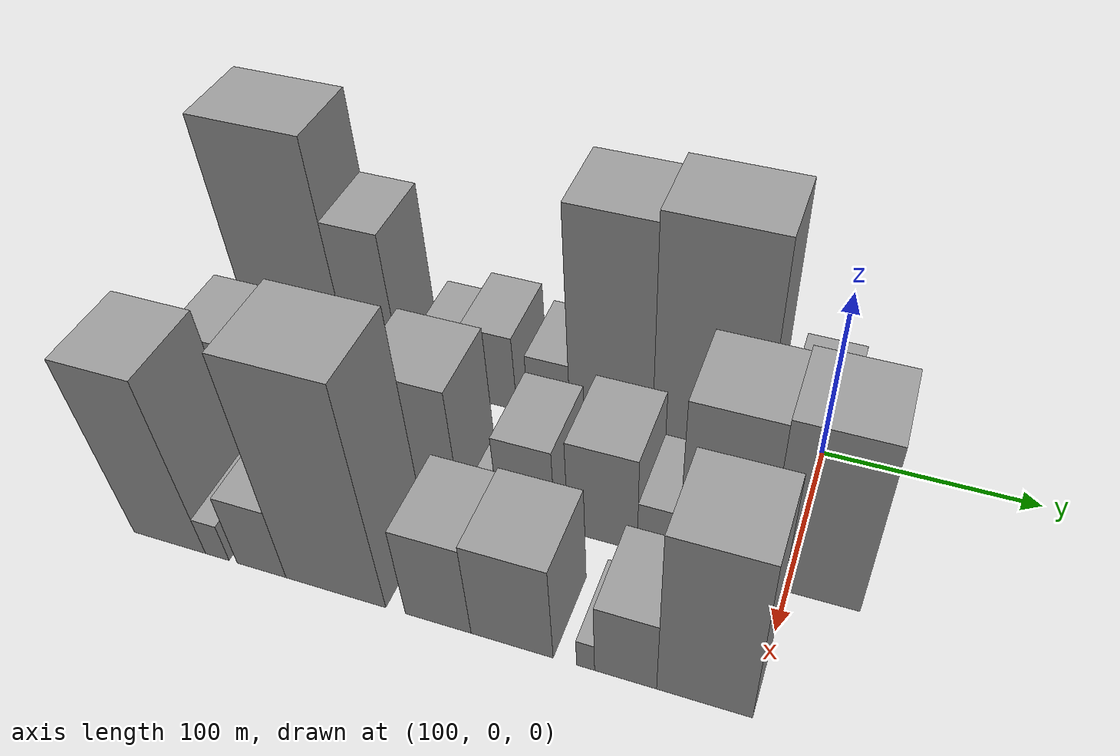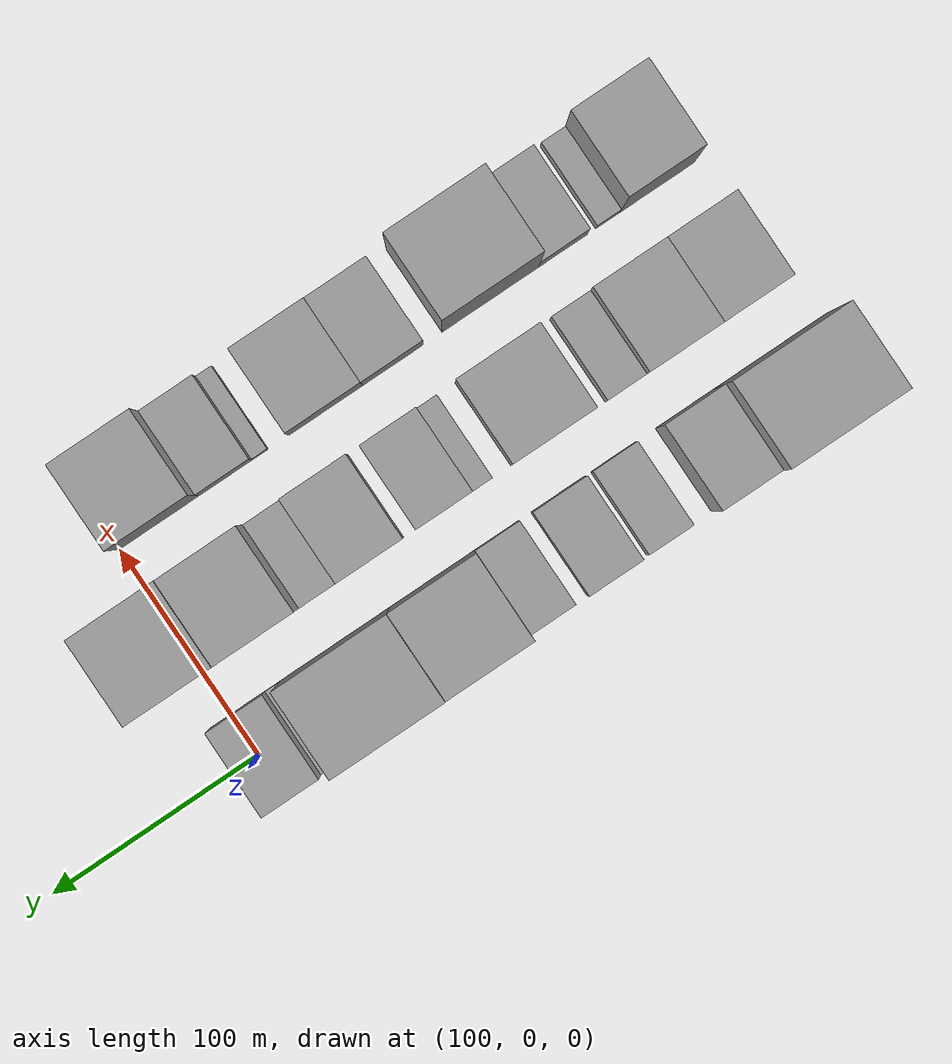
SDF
<sdf version="1.6">
 <world name="default">
  <model name="building_8">
   <static>1</static>
   <pose>100.0000 -261.7073 0 0.000000 0.000000 0.000000</pose>
   <link name="link">
    <pose>0 0 69.00 0 0 0</pose>
    <collision name="collision"><geometry><box><size>40.0000 54.6654 138.0000</size></box></geometry></collision>
    <visual name="visual">
     <cast_shadows>0</cast_shadows>
     <geometry><box><size>40.0000 54.6654 138.0000</size></box></geometry>
     <material>
      <script>
       <uri>model://grey_wall/materials/scripts</uri>
       <uri>model://grey_wall/materials/textures</uri>
       <name>vrc/grey_wall</name>
      </script>
     </material>
    </visual>
   </link>
  </model>
  <model name="building_9">
   <static>1</static>
   <pose>100.0000 -220.2208 0 0.000000 0.000000 0.000000</pose>
   <link name="link">
    <pose>0 0 46.50 0 0 0</pose>
    <collision name="collision"><geometry><box><size>40.0000 28.3076 93.0000</size></box></geometry></collision>
    <visual name="visual">
     <cast_shadows>0</cast_shadows>
     <geometry><box><size>40.0000 28.3076 93.0000</size></box></geometry>
     <material>
      <script>
       <uri>model://grey_wall/materials/scripts</uri>
       <uri>model://grey_wall/materials/textures</uri>
       <name>vrc/grey_wall</name>
      </script>
     </material>
    </visual>
   </link>
  </model>
  <model name="building_10">
   <static>1</static>
   <pose>100.0000 -185.3479 0 0.000000 0.000000 0.000000</pose>
   <link name="link">
    <pose>0 0 18.00 0 0 0</pose>
    <collision name="collision"><geometry><box><size>40.0000 21.4381 36.0000</size></box></geometry></collision>
    <visual name="visual">
     <cast_shadows>0</cast_shadows>
     <geometry><box><size>40.0000 21.4381 36.0000</size></box></geometry>
     <material>
      <script>
       <uri>model://grey_wall/materials/scripts</uri>
       <uri>model://grey_wall/materials/textures</uri>
       <name>vrc/grey_wall</name>
      </script>
     </material>
    </visual>
   </link>
  </model>
  <model name="building_11">
   <static>1</static>
   <pose>100.0000 -158.6383 0 0.000000 0.000000 0.000000</pose>
   <link name="link">
    <pose>0 0 24.00 0 0 0</pose>
    <collision name="collision"><geometry><box><size>40.0000 25.9812 48.0000</size></box></geometry></collision>
    <visual name="visual">
     <cast_shadows>0</cast_shadows>
     <geometry><box><size>40.0000 25.9812 48.0000</size></box></geometry>
     <material>
      <script>
       <uri>model://grey_wall/materials/scripts</uri>
       <uri>model://grey_wall/materials/textures</uri>
       <name>vrc/grey_wall</name>
      </script>
     </material>
    </visual>
   </link>
  </model>
  <model name="building_12">
   <static>1</static>
   <pose>100.0000 -128.9441 0 0.000000 0.000000 0.000000</pose>
   <link name="link">
    <pose>0 0 19.50 0 0 0</pose>
    <collision name="collision"><geometry><box><size>40.0000 21.4073 39.0000</size></box></geometry></collision>
    <visual name="visual">
     <cast_shadows>0</cast_shadows>
     <geometry><box><size>40.0000 21.4073 39.0000</size></box></geometry>
     <material>
      <script>
       <uri>model://grey_wall/materials/scripts</uri>
       <uri>model://grey_wall/materials/textures</uri>
       <name>vrc/grey_wall</name>
      </script>
     </material>
    </visual>
   </link>
  </model>
  <model name="building_13">
   <static>1</static>
   <pose>100.0000 -97.7758 0 0.000000 0.000000 0.000000</pose>
   <link name="link">
    <pose>0 0 66.00 0 0 0</pose>
    <collision name="collision"><geometry><box><size>40.0000 40.9294 132.0000</size></box></geometry></collision>
    <visual name="visual">
     <cast_shadows>0</cast_shadows>
     <geometry><box><size>40.0000 40.9294 132.0000</size></box></geometry>
     <material>
      <script>
       <uri>model://grey_wall/materials/scripts</uri>
       <uri>model://grey_wall/materials/textures</uri>
       <name>vrc/grey_wall</name>
      </script>
     </material>
    </visual>
   </link>
  </model>
  <model name="building_14">
   <static>1</static>
   <pose>100.0000 -50.9535 0 0.000000 0.000000 0.000000</pose>
   <link name="link">
    <pose>0 0 69.00 0 0 0</pose>
    <collision name="collision"><geometry><box><size>40.0000 52.7151 138.0000</size></box></geometry></collision>
    <visual name="visual">
     <cast_shadows>0</cast_shadows>
     <geometry><box><size>40.0000 52.7151 138.0000</size></box></geometry>
     <material>
      <script>
       <uri>model://grey_wall/materials/scripts</uri>
       <uri>model://grey_wall/materials/textures</uri>
       <name>vrc/grey_wall</name>
      </script>
     </material>
    </visual>
   </link>
  </model>
  <model name="building_15">
   <static>1</static>
   <pose>100.0000 -20.9547 0 0.000000 0.000000 0.000000</pose>
   <link name="link">
    <pose>0 0 9.00 0 0 0</pose>
    <collision name="collision"><geometry><box><size>40.0000 7.2826 18.0000</size></box></geometry></collision>
    <visual name="visual">
     <cast_shadows>0</cast_shadows>
     <geometry><box><size>40.0000 7.2826 18.0000</size></box></geometry>
     <material>
      <script>
       <uri>model://grey_wall/materials/scripts</uri>
       <uri>model://grey_wall/materials/textures</uri>
       <name>vrc/grey_wall</name>
      </script>
     </material>
    </visual>
   </link>
  </model>
  <model name="building_16">
   <static>1</static>
   <pose>100.0000 -3.7661 0 0.000000 0.000000 0.000000</pose>
   <link name="link">
    <pose>0 0 27.00 0 0 0</pose>
    <collision name="collision"><geometry><box><size>40.0000 27.0945 54.0000</size></box></geometry></collision>
    <visual name="visual">
     <cast_shadows>0</cast_shadows>
     <geometry><box><size>40.0000 27.0945 54.0000</size></box></geometry>
     <material>
      <script>
       <uri>model://grey_wall/materials/scripts</uri>
       <uri>model://grey_wall/materials/textures</uri>
       <name>vrc/grey_wall</name>
      </script>
     </material>
    </visual>
   </link>
  </model>
  <model name="building_46">
   <static>1</static>
   <pose>160.0000 -265.6744 0 0.000000 0.000000 0.000000</pose>
   <link name="link">
    <pose>0 0 33.00 0 0 0</pose>
    <collision name="collision"><geometry><box><size>40.0000 33.0507 66.0000</size></box></geometry></collision>
    <visual name="visual">
     <cast_shadows>0</cast_shadows>
     <geometry><box><size>40.0000 33.0507 66.0000</size></box></geometry>
     <material>
      <script>
       <uri>model://grey_wall/materials/scripts</uri>
       <uri>model://grey_wall/materials/textures</uri>
       <name>vrc/grey_wall</name>
      </script>
     </material>
    </visual>
   </link>
  </model>
  <model name="building_47">
   <static>1</static>
   <pose>160.0000 -231.5568 0 0.000000 0.000000 0.000000</pose>
   <link name="link">
    <pose>0 0 33.00 0 0 0</pose>
    <collision name="collision"><geometry><box><size>40.0000 35.1845 66.0000</size></box></geometry></collision>
    <visual name="visual">
     <cast_shadows>0</cast_shadows>
     <geometry><box><size>40.0000 35.1845 66.0000</size></box></geometry>
     <material>
      <script>
       <uri>model://grey_wall/materials/scripts</uri>
       <uri>model://grey_wall/materials/textures</uri>
       <name>vrc/grey_wall</name>
      </script>
     </material>
    </visual>
   </link>
  </model>
  <model name="building_48">
   <static>1</static>
   <pose>160.0000 -204.5643 0 0.000000 0.000000 0.000000</pose>
   <link name="link">
    <pose>0 0 18.00 0 0 0</pose>
    <collision name="collision"><geometry><box><size>40.0000 18.8004 36.0000</size></box></geometry></collision>
    <visual name="visual">
     <cast_shadows>0</cast_shadows>
     <geometry><box><size>40.0000 18.8004 36.0000</size></box></geometry>
     <material>
      <script>
       <uri>model://grey_wall/materials/scripts</uri>
       <uri>model://grey_wall/materials/textures</uri>
       <name>vrc/grey_wall</name>
      </script>
     </material>
    </visual>
   </link>
  </model>
  <model name="building_49">
   <static>1</static>
   <pose>160.0000 -169.2522 0 0.000000 0.000000 0.000000</pose>
   <link name="link">
    <pose>0 0 36.00 0 0 0</pose>
    <collision name="collision"><geometry><box><size>40.0000 39.8238 72.0000</size></box></geometry></collision>
    <visual name="visual">
     <cast_shadows>0</cast_shadows>
     <geometry><box><size>40.0000 39.8238 72.0000</size></box></geometry>
     <material>
      <script>
       <uri>model://grey_wall/materials/scripts</uri>
       <uri>model://grey_wall/materials/textures</uri>
       <name>vrc/grey_wall</name>
      </script>
     </material>
    </visual>
   </link>
  </model>
  <model name="building_50">
   <static>1</static>
   <pose>160.0000 -135.4877 0 0.000000 0.000000 0.000000</pose>
   <link name="link">
    <pose>0 0 12.00 0 0 0</pose>
    <collision name="collision"><geometry><box><size>40.0000 9.7053 24.0000</size></box></geometry></collision>
    <visual name="visual">
     <cast_shadows>0</cast_shadows>
     <geometry><box><size>40.0000 9.7053 24.0000</size></box></geometry>
     <material>
      <script>
       <uri>model://grey_wall/materials/scripts</uri>
       <uri>model://grey_wall/materials/textures</uri>
       <name>vrc/grey_wall</name>
      </script>
     </material>
    </visual>
   </link>
  </model>
  <model name="building_51">
   <static>1</static>
   <pose>160.0000 -117.0785 0 0.000000 0.000000 0.000000</pose>
   <link name="link">
    <pose>0 0 25.50 0 0 0</pose>
    <collision name="collision"><geometry><box><size>40.0000 27.1130 51.0000</size></box></geometry></collision>
    <visual name="visual">
     <cast_shadows>0</cast_shadows>
     <geometry><box><size>40.0000 27.1130 51.0000</size></box></geometry>
     <material>
      <script>
       <uri>model://grey_wall/materials/scripts</uri>
       <uri>model://grey_wall/materials/textures</uri>
       <name>vrc/grey_wall</name>
      </script>
     </material>
    </visual>
   </link>
  </model>
  <model name="building_52">
   <static>1</static>
   <pose>160.0000 -81.5995 0 0.000000 0.000000 0.000000</pose>
   <link name="link">
    <pose>0 0 30.00 0 0 0</pose>
    <collision name="collision"><geometry><box><size>40.0000 31.8449 60.0000</size></box></geometry></collision>
    <visual name="visual">
     <cast_shadows>0</cast_shadows>
     <geometry><box><size>40.0000 31.8449 60.0000</size></box></geometry>
     <material>
      <script>
       <uri>model://grey_wall/materials/scripts</uri>
       <uri>model://grey_wall/materials/textures</uri>
       <name>vrc/grey_wall</name>
      </script>
     </material>
    </visual>
   </link>
  </model>
  <model name="building_53">
   <static>1</static>
   <pose>160.0000 -56.6211 0 0.000000 0.000000 0.000000</pose>
   <link name="link">
    <pose>0 0 16.50 0 0 0</pose>
    <collision name="collision"><geometry><box><size>40.0000 18.1120 33.0000</size></box></geometry></collision>
    <visual name="visual">
     <cast_shadows>0</cast_shadows>
     <geometry><box><size>40.0000 18.1120 33.0000</size></box></geometry>
     <material>
      <script>
       <uri>model://grey_wall/materials/scripts</uri>
       <uri>model://grey_wall/materials/textures</uri>
       <name>vrc/grey_wall</name>
      </script>
     </material>
    </visual>
   </link>
  </model>
  <model name="building_54">
   <static>1</static>
   <pose>160.0000 -28.6241 0 0.000000 0.000000 0.000000</pose>
   <link name="link">
    <pose>0 0 51.00 0 0 0</pose>
    <collision name="collision"><geometry><box><size>40.0000 37.8820 102.0000</size></box></geometry></collision>
    <visual name="visual">
     <cast_shadows>0</cast_shadows>
     <geometry><box><size>40.0000 37.8820 102.0000</size></box></geometry>
     <material>
      <script>
       <uri>model://grey_wall/materials/scripts</uri>
       <uri>model://grey_wall/materials/textures</uri>
       <name>vrc/grey_wall</name>
      </script>
     </material>
    </visual>
   </link>
  </model>
  <model name="building_55">
   <static>1</static>
   <pose>160.0000 10.7575 0 0.000000 0.000000 0.000000</pose>
   <link name="link">
    <pose>0 0 52.50 0 0 0</pose>
    <collision name="collision"><geometry><box><size>40.0000 40.8811 105.0000</size></box></geometry></collision>
    <visual name="visual">
     <cast_shadows>0</cast_shadows>
     <geometry><box><size>40.0000 40.8811 105.0000</size></box></geometry>
     <material>
      <script>
       <uri>model://grey_wall/materials/scripts</uri>
       <uri>model://grey_wall/materials/textures</uri>
       <name>vrc/grey_wall</name>
      </script>
     </material>
    </visual>
   </link>
  </model>
  <model name="building_81">
   <static>1</static>
   <pose>220.0000 -260.6700 0 0.000000 0.000000 0.000000</pose>
   <link name="link">
    <pose>0 0 54.00 0 0 0</pose>
    <collision name="collision"><geometry><box><size>40.0000 36.0476 108.0000</size></box></geometry></collision>
    <visual name="visual">
     <cast_shadows>0</cast_shadows>
     <geometry><box><size>40.0000 36.0476 108.0000</size></box></geometry>
     <material>
      <script>
       <uri>model://grey_wall/materials/scripts</uri>
       <uri>model://grey_wall/materials/textures</uri>
       <name>vrc/grey_wall</name>
      </script>
     </material>
    </visual>
   </link>
  </model>
  <model name="building_82">
   <static>1</static>
   <pose>220.0000 -236.8047 0 0.000000 0.000000 0.000000</pose>
   <link name="link">
    <pose>0 0 12.00 0 0 0</pose>
    <collision name="collision"><geometry><box><size>40.0000 11.6829 24.0000</size></box></geometry></collision>
    <visual name="visual">
     <cast_shadows>0</cast_shadows>
     <geometry><box><size>40.0000 11.6829 24.0000</size></box></geometry>
     <material>
      <script>
       <uri>model://grey_wall/materials/scripts</uri>
       <uri>model://grey_wall/materials/textures</uri>
       <name>vrc/grey_wall</name>
      </script>
     </material>
    </visual>
   </link>
  </model>
  <model name="building_83">
   <static>1</static>
   <pose>220.0000 -215.0980 0 0.000000 0.000000 0.000000</pose>
   <link name="link">
    <pose>0 0 22.50 0 0 0</pose>
    <collision name="collision"><geometry><box><size>40.0000 23.7305 45.0000</size></box></geometry></collision>
    <visual name="visual">
     <cast_shadows>0</cast_shadows>
     <geometry><box><size>40.0000 23.7305 45.0000</size></box></geometry>
     <material>
      <script>
       <uri>model://grey_wall/materials/scripts</uri>
       <uri>model://grey_wall/materials/textures</uri>
       <name>vrc/grey_wall</name>
      </script>
     </material>
    </visual>
   </link>
  </model>
  <model name="building_84">
   <static>1</static>
   <pose>220.0000 -179.7923 0 0.000000 0.000000 0.000000</pose>
   <link name="link">
    <pose>0 0 67.50 0 0 0</pose>
    <collision name="collision"><geometry><box><size>40.0000 46.8808 135.0000</size></box></geometry></collision>
    <visual name="visual">
     <cast_shadows>0</cast_shadows>
     <geometry><box><size>40.0000 46.8808 135.0000</size></box></geometry>
     <material>
      <script>
       <uri>model://grey_wall/materials/scripts</uri>
       <uri>model://grey_wall/materials/textures</uri>
       <name>vrc/grey_wall</name>
      </script>
     </material>
    </visual>
   </link>
  </model>
  <model name="building_85">
   <static>1</static>
   <pose>220.0000 -132.6082 0 0.000000 0.000000 0.000000</pose>
   <link name="link">
    <pose>0 0 28.50 0 0 0</pose>
    <collision name="collision"><geometry><box><size>40.0000 29.4876 57.0000</size></box></geometry></collision>
    <visual name="visual">
     <cast_shadows>0</cast_shadows>
     <geometry><box><size>40.0000 29.4876 57.0000</size></box></geometry>
     <material>
      <script>
       <uri>model://grey_wall/materials/scripts</uri>
       <uri>model://grey_wall/materials/textures</uri>
       <name>vrc/grey_wall</name>
      </script>
     </material>
    </visual>
   </link>
  </model>
  <model name="building_86">
   <static>1</static>
   <pose>220.0000 -100.0007 0 0.000000 0.000000 0.000000</pose>
   <link name="link">
    <pose>0 0 30.00 0 0 0</pose>
    <collision name="collision"><geometry><box><size>40.0000 35.7273 60.0000</size></box></geometry></collision>
    <visual name="visual">
     <cast_shadows>0</cast_shadows>
     <geometry><box><size>40.0000 35.7273 60.0000</size></box></geometry>
     <material>
      <script>
       <uri>model://grey_wall/materials/scripts</uri>
       <uri>model://grey_wall/materials/textures</uri>
       <name>vrc/grey_wall</name>
      </script>
     </material>
    </visual>
   </link>
  </model>
  <model name="building_87">
   <static>1</static>
   <pose>220.0000 -68.3567 0 0.000000 0.000000 0.000000</pose>
   <link name="link">
    <pose>0 0 9.00 0 0 0</pose>
    <collision name="collision"><geometry><box><size>40.0000 7.5608 18.0000</size></box></geometry></collision>
    <visual name="visual">
     <cast_shadows>0</cast_shadows>
     <geometry><box><size>40.0000 7.5608 18.0000</size></box></geometry>
     <material>
      <script>
       <uri>model://grey_wall/materials/scripts</uri>
       <uri>model://grey_wall/materials/textures</uri>
       <name>vrc/grey_wall</name>
      </script>
     </material>
    </visual>
   </link>
  </model>
  <model name="building_88">
   <static>1</static>
   <pose>220.0000 -51.7179 0 0.000000 0.000000 0.000000</pose>
   <link name="link">
    <pose>0 0 22.50 0 0 0</pose>
    <collision name="collision"><geometry><box><size>40.0000 25.7167 45.0000</size></box></geometry></collision>
    <visual name="visual">
     <cast_shadows>0</cast_shadows>
     <geometry><box><size>40.0000 25.7167 45.0000</size></box></geometry>
     <material>
      <script>
       <uri>model://grey_wall/materials/scripts</uri>
       <uri>model://grey_wall/materials/textures</uri>
       <name>vrc/grey_wall</name>
      </script>
     </material>
    </visual>
   </link>
  </model>
  <model name="building_89">
   <static>1</static>
   <pose>220.0000 -19.5247 0 0.000000 0.000000 0.000000</pose>
   <link name="link">
    <pose>0 0 51.00 0 0 0</pose>
    <collision name="collision"><geometry><box><size>40.0000 38.6699 102.0000</size></box></geometry></collision>
    <visual name="visual">
     <cast_shadows>0</cast_shadows>
     <geometry><box><size>40.0000 38.6699 102.0000</size></box></geometry>
     <material>
      <script>
       <uri>model://grey_wall/materials/scripts</uri>
       <uri>model://grey_wall/materials/textures</uri>
       <name>vrc/grey_wall</name>
      </script>
     </material>
    </visual>
   </link>
  </model>
 </world>
</sdf>
